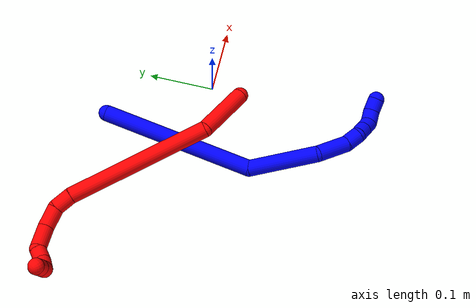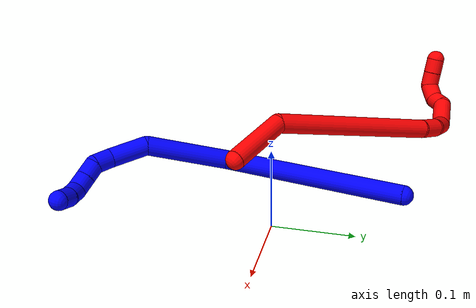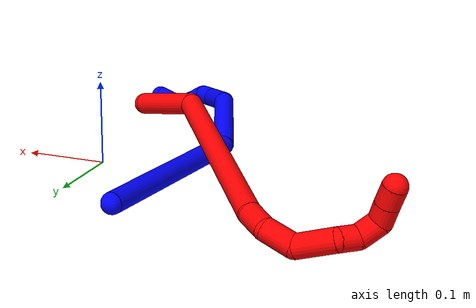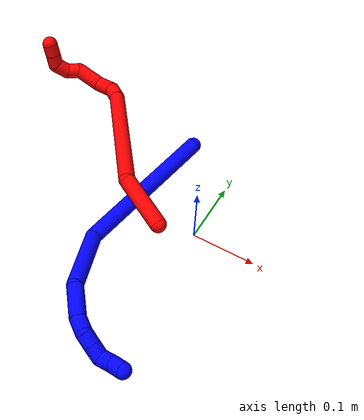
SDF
<sdf version="1.7">
 <world name="default">
  <model name="1">
   <static>0</static>
   <link name="1">
    <collision name="collision-cylinder-e_1_1_4">
     <pose>-0.004922 -0.018385 0.117868 0.154731 -0.041232 -0.003197</pose>
     <geometry><cylinder><radius>0.0125</radius><length>0.23879</length></cylinder></geometry>
     <surface>
      <friction><ode><mu>1.16</mu><mu2>1.16</mu2><slip1>0</slip1><slip2>0</slip2></ode></friction>
      <contact><ode><kp>1e+06</kp><kd>1</kd><max_vel>0</max_vel><min_depth>0.001</min_depth></ode></contact>
     </surface>
    </collision>
    <visual name="visual-cylinder-e_1_1_4">
     <pose>-0.004922 -0.018385 0.117868 0.154731 -0.041232 -0.003197</pose>
     <geometry><cylinder><radius>0.0125</radius><length>0.23879</length></cylinder></geometry>
     <material><ambient>0 0 1 1</ambient></material>
    </visual>
    <collision name="collision-cylinder-e_2_4_5">
     <pose>0.00322 -0.068628 0.277257 0.65447 0.244614 0.0834</pose>
     <geometry><cylinder><radius>0.0125</radius><length>0.10788</length></cylinder></geometry>
     <surface>
      <friction><ode><mu>1.16</mu><mu2>1.16</mu2><slip1>0</slip1><slip2>0</slip2></ode></friction>
      <contact><ode><kp>1e+06</kp><kd>1</kd><max_vel>0</max_vel><min_depth>0.001</min_depth></ode></contact>
     </surface>
    </collision>
    <visual name="visual-cylinder-e_2_4_5">
     <pose>0.00322 -0.068628 0.277257 0.65447 0.244614 0.0834</pose>
     <geometry><cylinder><radius>0.0125</radius><length>0.10788</length></cylinder></geometry>
     <material><ambient>0 0 1 1</ambient></material>
    </visual>
    <collision name="collision-cylinder-e_3_5_6">
     <pose>0.012716 -0.120913 0.33195 0.998058 -0.145716 -0.07952</pose>
     <geometry><cylinder><radius>0.0125</radius><length>0.049133</length></cylinder></geometry>
     <surface>
      <friction><ode><mu>1.16</mu><mu2>1.16</mu2><slip1>0</slip1><slip2>0</slip2></ode></friction>
      <contact><ode><kp>1e+06</kp><kd>1</kd><max_vel>0</max_vel><min_depth>0.001</min_depth></ode></contact>
     </surface>
    </collision>
    <visual name="visual-cylinder-e_3_5_6">
     <pose>0.012716 -0.120913 0.33195 0.998058 -0.145716 -0.07952</pose>
     <geometry><cylinder><radius>0.0125</radius><length>0.049133</length></cylinder></geometry>
     <material><ambient>0 0 1 1</ambient></material>
    </visual>
    <collision name="collision-cylinder-e_4_6_7">
     <pose>0.008864 -0.152573 0.348676 1.26436 -0.024236 -0.017753</pose>
     <geometry><cylinder><radius>0.0125</radius><length>0.023569</length></cylinder></geometry>
     <surface>
      <friction><ode><mu>1.16</mu><mu2>1.16</mu2><slip1>0</slip1><slip2>0</slip2></ode></friction>
      <contact><ode><kp>1e+06</kp><kd>1</kd><max_vel>0</max_vel><min_depth>0.001</min_depth></ode></contact>
     </surface>
    </collision>
    <visual name="visual-cylinder-e_4_6_7">
     <pose>0.008864 -0.152573 0.348676 1.26436 -0.024236 -0.017753</pose>
     <geometry><cylinder><radius>0.0125</radius><length>0.023569</length></cylinder></geometry>
     <material><ambient>0 0 1 1</ambient></material>
    </visual>
    <collision name="collision-cylinder-e_5_7_8">
     <pose>0.003843 -0.172713 0.352227 1.57115 -0.488603 -0.48877</pose>
     <geometry><cylinder><radius>0.0125</radius><length>0.020177</length></cylinder></geometry>
     <surface>
      <friction><ode><mu>1.16</mu><mu2>1.16</mu2><slip1>0</slip1><slip2>0</slip2></ode></friction>
      <contact><ode><kp>1e+06</kp><kd>1</kd><max_vel>0</max_vel><min_depth>0.001</min_depth></ode></contact>
     </surface>
    </collision>
    <visual name="visual-cylinder-e_5_7_8">
     <pose>0.003843 -0.172713 0.352227 1.57115 -0.488603 -0.48877</pose>
     <geometry><cylinder><radius>0.0125</radius><length>0.020177</length></cylinder></geometry>
     <material><ambient>0 0 1 1</ambient></material>
    </visual>
    <collision name="collision-cylinder-e_6_8_9">
     <pose>-0.005498 -0.190725 0.352045 1.59045 -0.468273 -0.477223</pose>
     <geometry><cylinder><radius>0.0125</radius><length>0.020409</length></cylinder></geometry>
     <surface>
      <friction><ode><mu>1.16</mu><mu2>1.16</mu2><slip1>0</slip1><slip2>0</slip2></ode></friction>
      <contact><ode><kp>1e+06</kp><kd>1</kd><max_vel>0</max_vel><min_depth>0.001</min_depth></ode></contact>
     </surface>
    </collision>
    <visual name="visual-cylinder-e_6_8_9">
     <pose>-0.005498 -0.190725 0.352045 1.59045 -0.468273 -0.477223</pose>
     <geometry><cylinder><radius>0.0125</radius><length>0.020409</length></cylinder></geometry>
     <material><ambient>0 0 1 1</ambient></material>
    </visual>
    <collision name="collision-cylinder-e_7_9_10">
     <pose>-0.008739 -0.209291 0.348928 1.87185 0.136949 0.185675</pose>
     <geometry><cylinder><radius>0.0125</radius><length>0.020002</length></cylinder></geometry>
     <surface>
      <friction><ode><mu>1.16</mu><mu2>1.16</mu2><slip1>0</slip1><slip2>0</slip2></ode></friction>
      <contact><ode><kp>1e+06</kp><kd>1</kd><max_vel>0</max_vel><min_depth>0.001</min_depth></ode></contact>
     </surface>
    </collision>
    <visual name="visual-cylinder-e_7_9_10">
     <pose>-0.008739 -0.209291 0.348928 1.87185 0.136949 0.185675</pose>
     <geometry><cylinder><radius>0.0125</radius><length>0.020002</length></cylinder></geometry>
     <material><ambient>0 0 1 1</ambient></material>
    </visual>
    <collision name="collision-cylinder-e_8_10_2">
     <pose>-0.004071 -0.228122 0.344681 1.7096 0.335924 0.384962</pose>
     <geometry><cylinder><radius>0.0125</radius><length>0.02004</length></cylinder></geometry>
     <surface>
      <friction><ode><mu>1.16</mu><mu2>1.16</mu2><slip1>0</slip1><slip2>0</slip2></ode></friction>
      <contact><ode><kp>1e+06</kp><kd>1</kd><max_vel>0</max_vel><min_depth>0.001</min_depth></ode></contact>
     </surface>
    </collision>
    <visual name="visual-cylinder-e_8_10_2">
     <pose>-0.004071 -0.228122 0.344681 1.7096 0.335924 0.384962</pose>
     <geometry><cylinder><radius>0.0125</radius><length>0.02004</length></cylinder></geometry>
     <material><ambient>0 0 1 1</ambient></material>
    </visual>
    <collision name="collision-sphere-2">
     <pose>-0.000768 -0.237491 0.343372 0 -0 0</pose>
     <geometry><sphere><radius>0.0125</radius></sphere></geometry>
     <surface>
      <friction><ode><mu>1.16</mu><mu2>1.16</mu2><slip1>0</slip1><slip2>0</slip2></ode></friction>
      <contact><ode><kp>1e+06</kp><kd>1</kd><max_vel>0</max_vel><min_depth>0.001</min_depth></ode></contact>
     </surface>
    </collision>
    <visual name="visual-sphere-2">
     <pose>-0.000768 -0.237491 0.343372 0 -0 0</pose>
     <geometry><sphere><radius>0.0125</radius></sphere></geometry>
     <material><ambient>0 0 1 1</ambient></material>
    </visual>
    <collision name="collision-sphere-10">
     <pose>-0.007374 -0.218753 0.34599 0 -0 0</pose>
     <geometry><sphere><radius>0.0125</radius></sphere></geometry>
     <surface>
      <friction><ode><mu>1.16</mu><mu2>1.16</mu2><slip1>0</slip1><slip2>0</slip2></ode></friction>
      <contact><ode><kp>1e+06</kp><kd>1</kd><max_vel>0</max_vel><min_depth>0.001</min_depth></ode></contact>
     </surface>
    </collision>
    <visual name="visual-sphere-10">
     <pose>-0.007374 -0.218753 0.34599 0 -0 0</pose>
     <geometry><sphere><radius>0.0125</radius></sphere></geometry>
     <material><ambient>0 0 1 1</ambient></material>
    </visual>
    <collision name="collision-sphere-9">
     <pose>-0.010104 -0.199829 0.351866 0 -0 0</pose>
     <geometry><sphere><radius>0.0125</radius></sphere></geometry>
     <surface>
      <friction><ode><mu>1.16</mu><mu2>1.16</mu2><slip1>0</slip1><slip2>0</slip2></ode></friction>
      <contact><ode><kp>1e+06</kp><kd>1</kd><max_vel>0</max_vel><min_depth>0.001</min_depth></ode></contact>
     </surface>
    </collision>
    <visual name="visual-sphere-9">
     <pose>-0.010104 -0.199829 0.351866 0 -0 0</pose>
     <geometry><sphere><radius>0.0125</radius></sphere></geometry>
     <material><ambient>0 0 1 1</ambient></material>
    </visual>
    <collision name="collision-sphere-4">
     <pose>-0.009843 -0.03677 0.235737 0 -0 0</pose>
     <geometry><sphere><radius>0.0125</radius></sphere></geometry>
     <surface>
      <friction><ode><mu>1.16</mu><mu2>1.16</mu2><slip1>0</slip1><slip2>0</slip2></ode></friction>
      <contact><ode><kp>1e+06</kp><kd>1</kd><max_vel>0</max_vel><min_depth>0.001</min_depth></ode></contact>
     </surface>
    </collision>
    <visual name="visual-sphere-4">
     <pose>-0.009843 -0.03677 0.235737 0 -0 0</pose>
     <geometry><sphere><radius>0.0125</radius></sphere></geometry>
     <material><ambient>0 0 1 1</ambient></material>
    </visual>
    <collision name="collision-sphere-1">
     <geometry><sphere><radius>0.0125</radius></sphere></geometry>
     <surface>
      <friction><ode><mu>1.16</mu><mu2>1.16</mu2><slip1>0</slip1><slip2>0</slip2></ode></friction>
      <contact><ode><kp>1e+06</kp><kd>1</kd><max_vel>0</max_vel><min_depth>0.001</min_depth></ode></contact>
     </surface>
    </collision>
    <visual name="visual-sphere-1">
     <geometry><sphere><radius>0.0125</radius></sphere></geometry>
     <material><ambient>0 0 1 1</ambient></material>
    </visual>
    <collision name="collision-sphere-8">
     <pose>-0.000893 -0.181621 0.352224 0 -0 0</pose>
     <geometry><sphere><radius>0.0125</radius></sphere></geometry>
     <surface>
      <friction><ode><mu>1.16</mu><mu2>1.16</mu2><slip1>0</slip1><slip2>0</slip2></ode></friction>
      <contact><ode><kp>1e+06</kp><kd>1</kd><max_vel>0</max_vel><min_depth>0.001</min_depth></ode></contact>
     </surface>
    </collision>
    <visual name="visual-sphere-8">
     <pose>-0.000893 -0.181621 0.352224 0 -0 0</pose>
     <geometry><sphere><radius>0.0125</radius></sphere></geometry>
     <material><ambient>0 0 1 1</ambient></material>
    </visual>
    <collision name="collision-sphere-5">
     <pose>0.016284 -0.100485 0.318777 0 -0 0</pose>
     <geometry><sphere><radius>0.0125</radius></sphere></geometry>
     <surface>
      <friction><ode><mu>1.16</mu><mu2>1.16</mu2><slip1>0</slip1><slip2>0</slip2></ode></friction>
      <contact><ode><kp>1e+06</kp><kd>1</kd><max_vel>0</max_vel><min_depth>0.001</min_depth></ode></contact>
     </surface>
    </collision>
    <visual name="visual-sphere-5">
     <pose>0.016284 -0.100485 0.318777 0 -0 0</pose>
     <geometry><sphere><radius>0.0125</radius></sphere></geometry>
     <material><ambient>0 0 1 1</ambient></material>
    </visual>
    <collision name="collision-sphere-6">
     <pose>0.009149 -0.14134 0.345122 0 -0 0</pose>
     <geometry><sphere><radius>0.0125</radius></sphere></geometry>
     <surface>
      <friction><ode><mu>1.16</mu><mu2>1.16</mu2><slip1>0</slip1><slip2>0</slip2></ode></friction>
      <contact><ode><kp>1e+06</kp><kd>1</kd><max_vel>0</max_vel><min_depth>0.001</min_depth></ode></contact>
     </surface>
    </collision>
    <visual name="visual-sphere-6">
     <pose>0.009149 -0.14134 0.345122 0 -0 0</pose>
     <geometry><sphere><radius>0.0125</radius></sphere></geometry>
     <material><ambient>0 0 1 1</ambient></material>
    </visual>
    <collision name="collision-sphere-7">
     <pose>0.008578 -0.163805 0.35223 0 -0 0</pose>
     <geometry><sphere><radius>0.0125</radius></sphere></geometry>
     <surface>
      <friction><ode><mu>1.16</mu><mu2>1.16</mu2><slip1>0</slip1><slip2>0</slip2></ode></friction>
      <contact><ode><kp>1e+06</kp><kd>1</kd><max_vel>0</max_vel><min_depth>0.001</min_depth></ode></contact>
     </surface>
    </collision>
    <visual name="visual-sphere-7">
     <pose>0.008578 -0.163805 0.35223 0 -0 0</pose>
     <geometry><sphere><radius>0.0125</radius></sphere></geometry>
     <material><ambient>0 0 1 1</ambient></material>
    </visual>
    <inertial>
     <pose>-0.00057 -0.074931 0.221525 0 -0 0</pose>
     <mass>0.5</mass>
     <inertia>
      <ixx>0.001271</ixx>
      <ixy>0</ixy>
      <ixz>0</ixz>
      <iyy>0.00121</iyy>
      <iyz>0</iyz>
      <izz>0.000308</izz>
     </inertia>
    </inertial>
   </link>
   <pose>-0.085296 0.14758 0.011571 0.514409 -1.51863 0.734592</pose>
  </model>
  <model name="2">
   <static>0</static>
   <link name="2">
    <collision name="collision-cylinder-e_1_1_4">
     <pose>-0.006395 0.008634 0.040866 -0.20822 -0.15194 0.015906</pose>
     <geometry><cylinder><radius>0.0125</radius><length>0.084509</length></cylinder></geometry>
     <surface>
      <friction><ode><mu>1.16</mu><mu2>1.16</mu2><slip1>0</slip1><slip2>0</slip2></ode></friction>
      <contact><ode><kp>1e+06</kp><kd>1</kd><max_vel>0</max_vel><min_depth>0.001</min_depth></ode></contact>
     </surface>
    </collision>
    <visual name="visual-cylinder-e_1_1_4">
     <pose>-0.006395 0.008634 0.040866 -0.20822 -0.15194 0.015906</pose>
     <geometry><cylinder><radius>0.0125</radius><length>0.084509</length></cylinder></geometry>
     <material><ambient>1 0 0 1</ambient></material>
    </visual>
    <collision name="collision-cylinder-e_2_4_5">
     <pose>0.011722 0.091301 0.162897 -0.739464 0.219533 -0.085373</pose>
     <geometry><cylinder><radius>0.0125</radius><length>0.225119</length></cylinder></geometry>
     <surface>
      <friction><ode><mu>1.16</mu><mu2>1.16</mu2><slip1>0</slip1><slip2>0</slip2></ode></friction>
      <contact><ode><kp>1e+06</kp><kd>1</kd><max_vel>0</max_vel><min_depth>0.001</min_depth></ode></contact>
     </surface>
    </collision>
    <visual name="visual-cylinder-e_2_4_5">
     <pose>0.011722 0.091301 0.162897 -0.739464 0.219533 -0.085373</pose>
     <geometry><cylinder><radius>0.0125</radius><length>0.225119</length></cylinder></geometry>
     <material><ambient>1 0 0 1</ambient></material>
    </visual>
    <collision name="collision-cylinder-e_3_5_6">
     <pose>0.036102 0.174249 0.255136 -0.677919 -0.009272 0.003269</pose>
     <geometry><cylinder><radius>0.0125</radius><length>0.028433</length></cylinder></geometry>
     <surface>
      <friction><ode><mu>1.16</mu><mu2>1.16</mu2><slip1>0</slip1><slip2>0</slip2></ode></friction>
      <contact><ode><kp>1e+06</kp><kd>1</kd><max_vel>0</max_vel><min_depth>0.001</min_depth></ode></contact>
     </surface>
    </collision>
    <visual name="visual-cylinder-e_3_5_6">
     <pose>0.036102 0.174249 0.255136 -0.677919 -0.009272 0.003269</pose>
     <geometry><cylinder><radius>0.0125</radius><length>0.028433</length></cylinder></geometry>
     <material><ambient>1 0 0 1</ambient></material>
    </visual>
    <collision name="collision-cylinder-e_4_6_7">
     <pose>0.028723 0.192768 0.278239 -0.673677 -0.440032 0.156308</pose>
     <geometry><cylinder><radius>0.0125</radius><length>0.034029</length></cylinder></geometry>
     <surface>
      <friction><ode><mu>1.16</mu><mu2>1.16</mu2><slip1>0</slip1><slip2>0</slip2></ode></friction>
      <contact><ode><kp>1e+06</kp><kd>1</kd><max_vel>0</max_vel><min_depth>0.001</min_depth></ode></contact>
     </surface>
    </collision>
    <visual name="visual-cylinder-e_4_6_7">
     <pose>0.028723 0.192768 0.278239 -0.673677 -0.440032 0.156308</pose>
     <geometry><cylinder><radius>0.0125</radius><length>0.034029</length></cylinder></geometry>
     <material><ambient>1 0 0 1</ambient></material>
    </visual>
    <collision name="collision-cylinder-e_5_7_8">
     <pose>0.010641 0.200952 0.308679 0.076975 -0.530639 -0.020926</pose>
     <geometry><cylinder><radius>0.0125</radius><length>0.042816</length></cylinder></geometry>
     <surface>
      <friction><ode><mu>1.16</mu><mu2>1.16</mu2><slip1>0</slip1><slip2>0</slip2></ode></friction>
      <contact><ode><kp>1e+06</kp><kd>1</kd><max_vel>0</max_vel><min_depth>0.001</min_depth></ode></contact>
     </surface>
    </collision>
    <visual name="visual-cylinder-e_5_7_8">
     <pose>0.010641 0.200952 0.308679 0.076975 -0.530639 -0.020926</pose>
     <geometry><cylinder><radius>0.0125</radius><length>0.042816</length></cylinder></geometry>
     <material><ambient>1 0 0 1</ambient></material>
    </visual>
    <collision name="collision-cylinder-e_6_8_9">
     <pose>-0.009778 0.198626 0.330664 0.248191 -1.20339 -0.170878</pose>
     <geometry><cylinder><radius>0.0125</radius><length>0.020541</length></cylinder></geometry>
     <surface>
      <friction><ode><mu>1.16</mu><mu2>1.16</mu2><slip1>0</slip1><slip2>0</slip2></ode></friction>
      <contact><ode><kp>1e+06</kp><kd>1</kd><max_vel>0</max_vel><min_depth>0.001</min_depth></ode></contact>
     </surface>
    </collision>
    <visual name="visual-cylinder-e_6_8_9">
     <pose>-0.009778 0.198626 0.330664 0.248191 -1.20339 -0.170878</pose>
     <geometry><cylinder><radius>0.0125</radius><length>0.020541</length></cylinder></geometry>
     <material><ambient>1 0 0 1</ambient></material>
    </visual>
    <collision name="collision-cylinder-e_7_9_10">
     <pose>-0.026512 0.19152 0.341688 0.694219 -0.635636 -0.236899</pose>
     <geometry><cylinder><radius>0.0125</radius><length>0.024083</length></cylinder></geometry>
     <surface>
      <friction><ode><mu>1.16</mu><mu2>1.16</mu2><slip1>0</slip1><slip2>0</slip2></ode></friction>
      <contact><ode><kp>1e+06</kp><kd>1</kd><max_vel>0</max_vel><min_depth>0.001</min_depth></ode></contact>
     </surface>
    </collision>
    <visual name="visual-cylinder-e_7_9_10">
     <pose>-0.026512 0.19152 0.341688 0.694219 -0.635636 -0.236899</pose>
     <geometry><cylinder><radius>0.0125</radius><length>0.024083</length></cylinder></geometry>
     <material><ambient>1 0 0 1</ambient></material>
    </visual>
    <collision name="collision-cylinder-e_8_10_11">
     <pose>-0.032298 0.177971 0.356034 0.817057 0.134327 0.058219</pose>
     <geometry><cylinder><radius>0.0125</radius><length>0.020345</length></cylinder></geometry>
     <surface>
      <friction><ode><mu>1.16</mu><mu2>1.16</mu2><slip1>0</slip1><slip2>0</slip2></ode></friction>
      <contact><ode><kp>1e+06</kp><kd>1</kd><max_vel>0</max_vel><min_depth>0.001</min_depth></ode></contact>
     </surface>
    </collision>
    <visual name="visual-cylinder-e_8_10_11">
     <pose>-0.032298 0.177971 0.356034 0.817057 0.134327 0.058219</pose>
     <geometry><cylinder><radius>0.0125</radius><length>0.020345</length></cylinder></geometry>
     <material><ambient>1 0 0 1</ambient></material>
    </visual>
    <collision name="collision-cylinder-e_9_11_2">
     <pose>-0.02973 0.16351 0.369951 0.791863 0.120106 0.050255</pose>
     <geometry><cylinder><radius>0.0125</radius><length>0.020126</length></cylinder></geometry>
     <surface>
      <friction><ode><mu>1.16</mu><mu2>1.16</mu2><slip1>0</slip1><slip2>0</slip2></ode></friction>
      <contact><ode><kp>1e+06</kp><kd>1</kd><max_vel>0</max_vel><min_depth>0.001</min_depth></ode></contact>
     </surface>
    </collision>
    <visual name="visual-cylinder-e_9_11_2">
     <pose>-0.02973 0.16351 0.369951 0.791863 0.120106 0.050255</pose>
     <geometry><cylinder><radius>0.0125</radius><length>0.020126</length></cylinder></geometry>
     <material><ambient>1 0 0 1</ambient></material>
    </visual>
    <collision name="collision-sphere-2">
     <pose>-0.028525 0.156401 0.37697 0 -0 0</pose>
     <geometry><sphere><radius>0.0125</radius></sphere></geometry>
     <surface>
      <friction><ode><mu>1.16</mu><mu2>1.16</mu2><slip1>0</slip1><slip2>0</slip2></ode></friction>
      <contact><ode><kp>1e+06</kp><kd>1</kd><max_vel>0</max_vel><min_depth>0.001</min_depth></ode></contact>
     </surface>
    </collision>
    <visual name="visual-sphere-2">
     <pose>-0.028525 0.156401 0.37697 0 -0 0</pose>
     <geometry><sphere><radius>0.0125</radius></sphere></geometry>
     <material><ambient>1 0 0 1</ambient></material>
    </visual>
    <collision name="collision-sphere-11">
     <pose>-0.030936 0.17062 0.362933 0 -0 0</pose>
     <geometry><sphere><radius>0.0125</radius></sphere></geometry>
     <surface>
      <friction><ode><mu>1.16</mu><mu2>1.16</mu2><slip1>0</slip1><slip2>0</slip2></ode></friction>
      <contact><ode><kp>1e+06</kp><kd>1</kd><max_vel>0</max_vel><min_depth>0.001</min_depth></ode></contact>
     </surface>
    </collision>
    <visual name="visual-sphere-11">
     <pose>-0.030936 0.17062 0.362933 0 -0 0</pose>
     <geometry><sphere><radius>0.0125</radius></sphere></geometry>
     <material><ambient>1 0 0 1</ambient></material>
    </visual>
    <collision name="collision-sphere-10">
     <pose>-0.033661 0.185321 0.349134 0 -0 0</pose>
     <geometry><sphere><radius>0.0125</radius></sphere></geometry>
     <surface>
      <friction><ode><mu>1.16</mu><mu2>1.16</mu2><slip1>0</slip1><slip2>0</slip2></ode></friction>
      <contact><ode><kp>1e+06</kp><kd>1</kd><max_vel>0</max_vel><min_depth>0.001</min_depth></ode></contact>
     </surface>
    </collision>
    <visual name="visual-sphere-10">
     <pose>-0.033661 0.185321 0.349134 0 -0 0</pose>
     <geometry><sphere><radius>0.0125</radius></sphere></geometry>
     <material><ambient>1 0 0 1</ambient></material>
    </visual>
    <collision name="collision-sphere-9">
     <pose>-0.019363 0.197719 0.334241 0 -0 0</pose>
     <geometry><sphere><radius>0.0125</radius></sphere></geometry>
     <surface>
      <friction><ode><mu>1.16</mu><mu2>1.16</mu2><slip1>0</slip1><slip2>0</slip2></ode></friction>
      <contact><ode><kp>1e+06</kp><kd>1</kd><max_vel>0</max_vel><min_depth>0.001</min_depth></ode></contact>
     </surface>
    </collision>
    <visual name="visual-sphere-9">
     <pose>-0.019363 0.197719 0.334241 0 -0 0</pose>
     <geometry><sphere><radius>0.0125</radius></sphere></geometry>
     <material><ambient>1 0 0 1</ambient></material>
    </visual>
    <collision name="collision-sphere-4">
     <pose>-0.012791 0.017268 0.081731 0 -0 0</pose>
     <geometry><sphere><radius>0.0125</radius></sphere></geometry>
     <surface>
      <friction><ode><mu>1.16</mu><mu2>1.16</mu2><slip1>0</slip1><slip2>0</slip2></ode></friction>
      <contact><ode><kp>1e+06</kp><kd>1</kd><max_vel>0</max_vel><min_depth>0.001</min_depth></ode></contact>
     </surface>
    </collision>
    <visual name="visual-sphere-4">
     <pose>-0.012791 0.017268 0.081731 0 -0 0</pose>
     <geometry><sphere><radius>0.0125</radius></sphere></geometry>
     <material><ambient>1 0 0 1</ambient></material>
    </visual>
    <collision name="collision-sphere-1">
     <geometry><sphere><radius>0.0125</radius></sphere></geometry>
     <surface>
      <friction><ode><mu>1.16</mu><mu2>1.16</mu2><slip1>0</slip1><slip2>0</slip2></ode></friction>
      <contact><ode><kp>1e+06</kp><kd>1</kd><max_vel>0</max_vel><min_depth>0.001</min_depth></ode></contact>
     </surface>
    </collision>
    <visual name="visual-sphere-1">
     <geometry><sphere><radius>0.0125</radius></sphere></geometry>
     <material><ambient>1 0 0 1</ambient></material>
    </visual>
    <collision name="collision-sphere-8">
     <pose>-0.000193 0.199532 0.327088 0 -0 0</pose>
     <geometry><sphere><radius>0.0125</radius></sphere></geometry>
     <surface>
      <friction><ode><mu>1.16</mu><mu2>1.16</mu2><slip1>0</slip1><slip2>0</slip2></ode></friction>
      <contact><ode><kp>1e+06</kp><kd>1</kd><max_vel>0</max_vel><min_depth>0.001</min_depth></ode></contact>
     </surface>
    </collision>
    <visual name="visual-sphere-8">
     <pose>-0.000193 0.199532 0.327088 0 -0 0</pose>
     <geometry><sphere><radius>0.0125</radius></sphere></geometry>
     <material><ambient>1 0 0 1</ambient></material>
    </visual>
    <collision name="collision-sphere-5">
     <pose>0.036234 0.165333 0.244063 0 -0 0</pose>
     <geometry><sphere><radius>0.0125</radius></sphere></geometry>
     <surface>
      <friction><ode><mu>1.16</mu><mu2>1.16</mu2><slip1>0</slip1><slip2>0</slip2></ode></friction>
      <contact><ode><kp>1e+06</kp><kd>1</kd><max_vel>0</max_vel><min_depth>0.001</min_depth></ode></contact>
     </surface>
    </collision>
    <visual name="visual-sphere-5">
     <pose>0.036234 0.165333 0.244063 0 -0 0</pose>
     <geometry><sphere><radius>0.0125</radius></sphere></geometry>
     <material><ambient>1 0 0 1</ambient></material>
    </visual>
    <collision name="collision-sphere-6">
     <pose>0.035971 0.183165 0.266208 0 -0 0</pose>
     <geometry><sphere><radius>0.0125</radius></sphere></geometry>
     <surface>
      <friction><ode><mu>1.16</mu><mu2>1.16</mu2><slip1>0</slip1><slip2>0</slip2></ode></friction>
      <contact><ode><kp>1e+06</kp><kd>1</kd><max_vel>0</max_vel><min_depth>0.001</min_depth></ode></contact>
     </surface>
    </collision>
    <visual name="visual-sphere-6">
     <pose>0.035971 0.183165 0.266208 0 -0 0</pose>
     <geometry><sphere><radius>0.0125</radius></sphere></geometry>
     <material><ambient>1 0 0 1</ambient></material>
    </visual>
    <collision name="collision-sphere-7">
     <pose>0.021475 0.202372 0.29027 0 -0 0</pose>
     <geometry><sphere><radius>0.0125</radius></sphere></geometry>
     <surface>
      <friction><ode><mu>1.16</mu><mu2>1.16</mu2><slip1>0</slip1><slip2>0</slip2></ode></friction>
      <contact><ode><kp>1e+06</kp><kd>1</kd><max_vel>0</max_vel><min_depth>0.001</min_depth></ode></contact>
     </surface>
    </collision>
    <visual name="visual-sphere-7">
     <pose>0.021475 0.202372 0.29027 0 -0 0</pose>
     <geometry><sphere><radius>0.0125</radius></sphere></geometry>
     <material><ambient>1 0 0 1</ambient></material>
    </visual>
    <inertial>
     <pose>0.004926 0.11401 0.199547 0 -0 0</pose>
     <mass>0.5</mass>
     <inertia>
      <ixx>0.000924</ixx>
      <ixy>0</ixy>
      <ixz>0</ixz>
      <iyy>0.000724</iyy>
      <iyz>0</iyz>
      <izz>-0.000806</izz>
     </inertia>
    </inertial>
   </link>
   <pose>-0.03452 -0.051134 0.064975 -1.13088 -0.216609 0.926719</pose>
  </model>
 </world>
</sdf>
